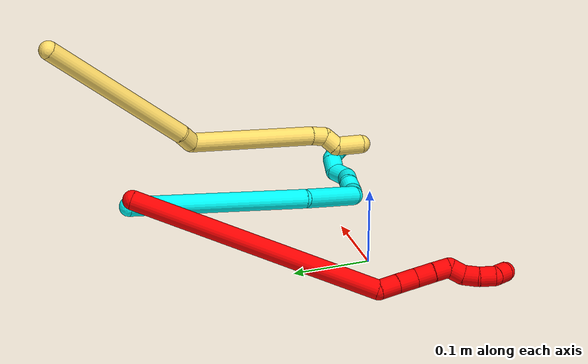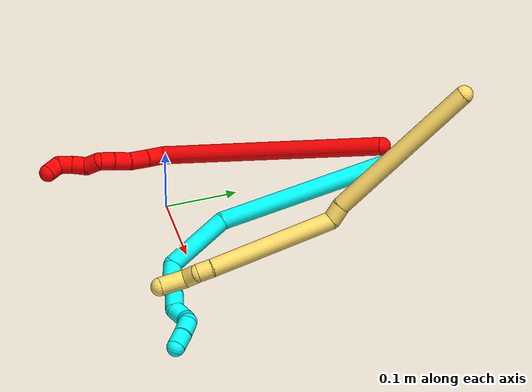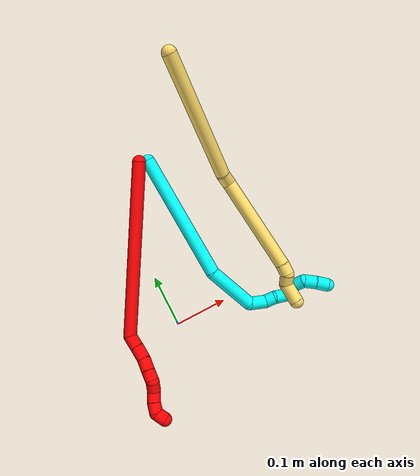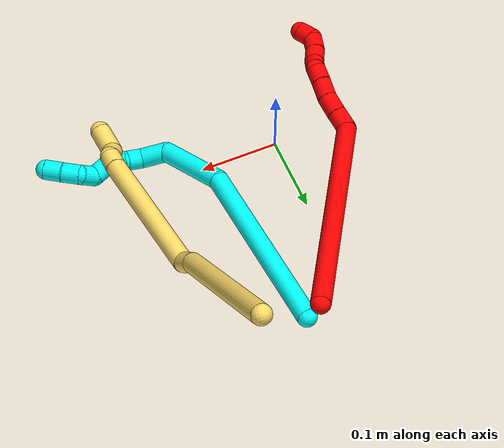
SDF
<sdf version="1.7">
 <world name="default">
  <model name="2">
   <static>0</static>
   <link name="2">
    <collision name="collision-cylinder-e_1_1_4">
     <pose>-0.065632 -0.099158 -0.11053 2.41037 -0.416177 -1.00806</pose>
     <geometry><cylinder><radius>0.0125</radius><length>0.324695</length></cylinder></geometry>
     <surface>
      <friction><ode><mu>1.16</mu><mu2>1.16</mu2><slip1>0</slip1><slip2>0</slip2></ode></friction>
      <contact><ode><kp>1e+06</kp><kd>1</kd><max_vel>0</max_vel><min_depth>0.001</min_depth></ode></contact>
     </surface>
    </collision>
    <visual name="visual-cylinder-e_1_1_4">
     <pose>-0.065632 -0.099158 -0.11053 2.41037 -0.416177 -1.00806</pose>
     <geometry><cylinder><radius>0.0125</radius><length>0.324695</length></cylinder></geometry>
     <material><ambient>1 0 0 1</ambient></material>
    </visual>
    <collision name="collision-cylinder-e_2_4_5">
     <pose>-0.132399 -0.210656 -0.222706 1.70341 -0.090958 -0.103876</pose>
     <geometry><cylinder><radius>0.0125</radius><length>0.025002</length></cylinder></geometry>
     <surface>
      <friction><ode><mu>1.16</mu><mu2>1.16</mu2><slip1>0</slip1><slip2>0</slip2></ode></friction>
      <contact><ode><kp>1e+06</kp><kd>1</kd><max_vel>0</max_vel><min_depth>0.001</min_depth></ode></contact>
     </surface>
    </collision>
    <visual name="visual-cylinder-e_2_4_5">
     <pose>-0.132399 -0.210656 -0.222706 1.70341 -0.090958 -0.103876</pose>
     <geometry><cylinder><radius>0.0125</radius><length>0.025002</length></cylinder></geometry>
     <material><ambient>1 0 0 1</ambient></material>
    </visual>
    <collision name="collision-cylinder-e_3_5_6">
     <pose>-0.135058 -0.235643 -0.226225 1.71788 -0.118668 -0.137489</pose>
     <geometry><cylinder><radius>0.0125</radius><length>0.025751</length></cylinder></geometry>
     <surface>
      <friction><ode><mu>1.16</mu><mu2>1.16</mu2><slip1>0</slip1><slip2>0</slip2></ode></friction>
      <contact><ode><kp>1e+06</kp><kd>1</kd><max_vel>0</max_vel><min_depth>0.001</min_depth></ode></contact>
     </surface>
    </collision>
    <visual name="visual-cylinder-e_3_5_6">
     <pose>-0.135058 -0.235643 -0.226225 1.71788 -0.118668 -0.137489</pose>
     <geometry><cylinder><radius>0.0125</radius><length>0.025751</length></cylinder></geometry>
     <material><ambient>1 0 0 1</ambient></material>
    </visual>
    <collision name="collision-cylinder-e_4_6_7">
     <pose>-0.140235 -0.259613 -0.229545 1.69783 -0.309681 -0.35094</pose>
     <geometry><cylinder><radius>0.0125</radius><length>0.02397</length></cylinder></geometry>
     <surface>
      <friction><ode><mu>1.16</mu><mu2>1.16</mu2><slip1>0</slip1><slip2>0</slip2></ode></friction>
      <contact><ode><kp>1e+06</kp><kd>1</kd><max_vel>0</max_vel><min_depth>0.001</min_depth></ode></contact>
     </surface>
    </collision>
    <visual name="visual-cylinder-e_4_6_7">
     <pose>-0.140235 -0.259613 -0.229545 1.69783 -0.309681 -0.35094</pose>
     <geometry><cylinder><radius>0.0125</radius><length>0.02397</length></cylinder></geometry>
     <material><ambient>1 0 0 1</ambient></material>
    </visual>
    <collision name="collision-cylinder-e_5_7_8">
     <pose>-0.146526 -0.280599 -0.232405 1.71612 -0.263877 -0.304713</pose>
     <geometry><cylinder><radius>0.0125</radius><length>0.020232</length></cylinder></geometry>
     <surface>
      <friction><ode><mu>1.16</mu><mu2>1.16</mu2><slip1>0</slip1><slip2>0</slip2></ode></friction>
      <contact><ode><kp>1e+06</kp><kd>1</kd><max_vel>0</max_vel><min_depth>0.001</min_depth></ode></contact>
     </surface>
    </collision>
    <visual name="visual-cylinder-e_5_7_8">
     <pose>-0.146526 -0.280599 -0.232405 1.71612 -0.263877 -0.304713</pose>
     <geometry><cylinder><radius>0.0125</radius><length>0.020232</length></cylinder></geometry>
     <material><ambient>1 0 0 1</ambient></material>
    </visual>
    <collision name="collision-cylinder-e_6_8_9">
     <pose>-0.150354 -0.296393 -0.241801 2.48654 -0.117641 -0.343232</pose>
     <geometry><cylinder><radius>0.0125</radius><length>0.020268</length></cylinder></geometry>
     <surface>
      <friction><ode><mu>1.16</mu><mu2>1.16</mu2><slip1>0</slip1><slip2>0</slip2></ode></friction>
      <contact><ode><kp>1e+06</kp><kd>1</kd><max_vel>0</max_vel><min_depth>0.001</min_depth></ode></contact>
     </surface>
    </collision>
    <visual name="visual-cylinder-e_6_8_9">
     <pose>-0.150354 -0.296393 -0.241801 2.48654 -0.117641 -0.343232</pose>
     <geometry><cylinder><radius>0.0125</radius><length>0.020268</length></cylinder></geometry>
     <material><ambient>1 0 0 1</ambient></material>
    </visual>
    <collision name="collision-cylinder-e_7_9_10">
     <pose>-0.156544 -0.309752 -0.254629 2.16155 -0.521532 -0.927693</pose>
     <geometry><cylinder><radius>0.0125</radius><length>0.020075</length></cylinder></geometry>
     <surface>
      <friction><ode><mu>1.16</mu><mu2>1.16</mu2><slip1>0</slip1><slip2>0</slip2></ode></friction>
      <contact><ode><kp>1e+06</kp><kd>1</kd><max_vel>0</max_vel><min_depth>0.001</min_depth></ode></contact>
     </surface>
    </collision>
    <visual name="visual-cylinder-e_7_9_10">
     <pose>-0.156544 -0.309752 -0.254629 2.16155 -0.521532 -0.927693</pose>
     <geometry><cylinder><radius>0.0125</radius><length>0.020075</length></cylinder></geometry>
     <material><ambient>1 0 0 1</ambient></material>
    </visual>
    <collision name="collision-cylinder-e_8_10_11">
     <pose>-0.165001 -0.325657 -0.263058 1.96225 -0.352734 -0.52064</pose>
     <geometry><cylinder><radius>0.0125</radius><length>0.020006</length></cylinder></geometry>
     <surface>
      <friction><ode><mu>1.16</mu><mu2>1.16</mu2><slip1>0</slip1><slip2>0</slip2></ode></friction>
      <contact><ode><kp>1e+06</kp><kd>1</kd><max_vel>0</max_vel><min_depth>0.001</min_depth></ode></contact>
     </surface>
    </collision>
    <visual name="visual-cylinder-e_8_10_11">
     <pose>-0.165001 -0.325657 -0.263058 1.96225 -0.352734 -0.52064</pose>
     <geometry><cylinder><radius>0.0125</radius><length>0.020006</length></cylinder></geometry>
     <material><ambient>1 0 0 1</ambient></material>
    </visual>
    <collision name="collision-cylinder-e_9_11_2">
     <pose>-0.165033 -0.343641 -0.267935 1.70917 0.349437 0.40018</pose>
     <geometry><cylinder><radius>0.0125</radius><length>0.020001</length></cylinder></geometry>
     <surface>
      <friction><ode><mu>1.16</mu><mu2>1.16</mu2><slip1>0</slip1><slip2>0</slip2></ode></friction>
      <contact><ode><kp>1e+06</kp><kd>1</kd><max_vel>0</max_vel><min_depth>0.001</min_depth></ode></contact>
     </surface>
    </collision>
    <visual name="visual-cylinder-e_9_11_2">
     <pose>-0.165033 -0.343641 -0.267935 1.70917 0.349437 0.40018</pose>
     <geometry><cylinder><radius>0.0125</radius><length>0.020001</length></cylinder></geometry>
     <material><ambient>1 0 0 1</ambient></material>
    </visual>
    <collision name="collision-sphere-2">
     <pose>-0.161609 -0.352947 -0.269232 0 -0 0</pose>
     <geometry><sphere><radius>0.0125</radius></sphere></geometry>
     <surface>
      <friction><ode><mu>1.16</mu><mu2>1.16</mu2><slip1>0</slip1><slip2>0</slip2></ode></friction>
      <contact><ode><kp>1e+06</kp><kd>1</kd><max_vel>0</max_vel><min_depth>0.001</min_depth></ode></contact>
     </surface>
    </collision>
    <visual name="visual-sphere-2">
     <pose>-0.161609 -0.352947 -0.269232 0 -0 0</pose>
     <geometry><sphere><radius>0.0125</radius></sphere></geometry>
     <material><ambient>1 0 0 1</ambient></material>
    </visual>
    <collision name="collision-sphere-11">
     <pose>-0.168456 -0.334334 -0.266639 0 -0 0</pose>
     <geometry><sphere><radius>0.0125</radius></sphere></geometry>
     <surface>
      <friction><ode><mu>1.16</mu><mu2>1.16</mu2><slip1>0</slip1><slip2>0</slip2></ode></friction>
      <contact><ode><kp>1e+06</kp><kd>1</kd><max_vel>0</max_vel><min_depth>0.001</min_depth></ode></contact>
     </surface>
    </collision>
    <visual name="visual-sphere-11">
     <pose>-0.168456 -0.334334 -0.266639 0 -0 0</pose>
     <geometry><sphere><radius>0.0125</radius></sphere></geometry>
     <material><ambient>1 0 0 1</ambient></material>
    </visual>
    <collision name="collision-sphere-10">
     <pose>-0.161545 -0.316981 -0.259477 0 -0 0</pose>
     <geometry><sphere><radius>0.0125</radius></sphere></geometry>
     <surface>
      <friction><ode><mu>1.16</mu><mu2>1.16</mu2><slip1>0</slip1><slip2>0</slip2></ode></friction>
      <contact><ode><kp>1e+06</kp><kd>1</kd><max_vel>0</max_vel><min_depth>0.001</min_depth></ode></contact>
     </surface>
    </collision>
    <visual name="visual-sphere-10">
     <pose>-0.161545 -0.316981 -0.259477 0 -0 0</pose>
     <geometry><sphere><radius>0.0125</radius></sphere></geometry>
     <material><ambient>1 0 0 1</ambient></material>
    </visual>
    <collision name="collision-sphere-9">
     <pose>-0.151544 -0.302524 -0.249782 0 -0 0</pose>
     <geometry><sphere><radius>0.0125</radius></sphere></geometry>
     <surface>
      <friction><ode><mu>1.16</mu><mu2>1.16</mu2><slip1>0</slip1><slip2>0</slip2></ode></friction>
      <contact><ode><kp>1e+06</kp><kd>1</kd><max_vel>0</max_vel><min_depth>0.001</min_depth></ode></contact>
     </surface>
    </collision>
    <visual name="visual-sphere-9">
     <pose>-0.151544 -0.302524 -0.249782 0 -0 0</pose>
     <geometry><sphere><radius>0.0125</radius></sphere></geometry>
     <material><ambient>1 0 0 1</ambient></material>
    </visual>
    <collision name="collision-sphere-4">
     <pose>-0.131263 -0.198316 -0.221059 0 -0 0</pose>
     <geometry><sphere><radius>0.0125</radius></sphere></geometry>
     <surface>
      <friction><ode><mu>1.16</mu><mu2>1.16</mu2><slip1>0</slip1><slip2>0</slip2></ode></friction>
      <contact><ode><kp>1e+06</kp><kd>1</kd><max_vel>0</max_vel><min_depth>0.001</min_depth></ode></contact>
     </surface>
    </collision>
    <visual name="visual-sphere-4">
     <pose>-0.131263 -0.198316 -0.221059 0 -0 0</pose>
     <geometry><sphere><radius>0.0125</radius></sphere></geometry>
     <material><ambient>1 0 0 1</ambient></material>
    </visual>
    <collision name="collision-sphere-1">
     <geometry><sphere><radius>0.0125</radius></sphere></geometry>
     <surface>
      <friction><ode><mu>1.16</mu><mu2>1.16</mu2><slip1>0</slip1><slip2>0</slip2></ode></friction>
      <contact><ode><kp>1e+06</kp><kd>1</kd><max_vel>0</max_vel><min_depth>0.001</min_depth></ode></contact>
     </surface>
    </collision>
    <visual name="visual-sphere-1">
     <geometry><sphere><radius>0.0125</radius></sphere></geometry>
     <material><ambient>1 0 0 1</ambient></material>
    </visual>
    <collision name="collision-sphere-8">
     <pose>-0.149165 -0.290262 -0.23382 0 -0 0</pose>
     <geometry><sphere><radius>0.0125</radius></sphere></geometry>
     <surface>
      <friction><ode><mu>1.16</mu><mu2>1.16</mu2><slip1>0</slip1><slip2>0</slip2></ode></friction>
      <contact><ode><kp>1e+06</kp><kd>1</kd><max_vel>0</max_vel><min_depth>0.001</min_depth></ode></contact>
     </surface>
    </collision>
    <visual name="visual-sphere-8">
     <pose>-0.149165 -0.290262 -0.23382 0 -0 0</pose>
     <geometry><sphere><radius>0.0125</radius></sphere></geometry>
     <material><ambient>1 0 0 1</ambient></material>
    </visual>
    <collision name="collision-sphere-5">
     <pose>-0.133534 -0.222997 -0.224352 0 -0 0</pose>
     <geometry><sphere><radius>0.0125</radius></sphere></geometry>
     <surface>
      <friction><ode><mu>1.16</mu><mu2>1.16</mu2><slip1>0</slip1><slip2>0</slip2></ode></friction>
      <contact><ode><kp>1e+06</kp><kd>1</kd><max_vel>0</max_vel><min_depth>0.001</min_depth></ode></contact>
     </surface>
    </collision>
    <visual name="visual-sphere-5">
     <pose>-0.133534 -0.222997 -0.224352 0 -0 0</pose>
     <geometry><sphere><radius>0.0125</radius></sphere></geometry>
     <material><ambient>1 0 0 1</ambient></material>
    </visual>
    <collision name="collision-sphere-6">
     <pose>-0.136583 -0.24829 -0.228099 0 -0 0</pose>
     <geometry><sphere><radius>0.0125</radius></sphere></geometry>
     <surface>
      <friction><ode><mu>1.16</mu><mu2>1.16</mu2><slip1>0</slip1><slip2>0</slip2></ode></friction>
      <contact><ode><kp>1e+06</kp><kd>1</kd><max_vel>0</max_vel><min_depth>0.001</min_depth></ode></contact>
     </surface>
    </collision>
    <visual name="visual-sphere-6">
     <pose>-0.136583 -0.24829 -0.228099 0 -0 0</pose>
     <geometry><sphere><radius>0.0125</radius></sphere></geometry>
     <material><ambient>1 0 0 1</ambient></material>
    </visual>
    <collision name="collision-sphere-7">
     <pose>-0.143888 -0.270936 -0.230991 0 -0 0</pose>
     <geometry><sphere><radius>0.0125</radius></sphere></geometry>
     <surface>
      <friction><ode><mu>1.16</mu><mu2>1.16</mu2><slip1>0</slip1><slip2>0</slip2></ode></friction>
      <contact><ode><kp>1e+06</kp><kd>1</kd><max_vel>0</max_vel><min_depth>0.001</min_depth></ode></contact>
     </surface>
    </collision>
    <visual name="visual-sphere-7">
     <pose>-0.143888 -0.270936 -0.230991 0 -0 0</pose>
     <geometry><sphere><radius>0.0125</radius></sphere></geometry>
     <material><ambient>1 0 0 1</ambient></material>
    </visual>
    <inertial>
     <pose>-0.094432 -0.16209 -0.156241 0 -0 0</pose>
     <mass>0.5</mass>
     <inertia>
      <ixx>-0.000822</ixx>
      <ixy>0</ixy>
      <ixz>0</ixz>
      <iyy>-0.002733</iyy>
      <iyz>0</iyz>
      <izz>0.002902</izz>
     </inertia>
    </inertial>
   </link>
   <pose>0.07078 0.288031 0.10012 -0.207517 0.51208 0.152343</pose>
  </model>
  <model name="3">
   <static>0</static>
   <link name="3">
    <collision name="collision-cylinder-e_1_1_4">
     <pose>0.049196 -0.089648 -0.062748 2.18148 0.422505 0.78139</pose>
     <geometry><cylinder><radius>0.0125</radius><length>0.239952</length></cylinder></geometry>
     <surface>
      <friction><ode><mu>1.16</mu><mu2>1.16</mu2><slip1>0</slip1><slip2>0</slip2></ode></friction>
      <contact><ode><kp>1e+06</kp><kd>1</kd><max_vel>0</max_vel><min_depth>0.001</min_depth></ode></contact>
     </surface>
    </collision>
    <visual name="visual-cylinder-e_1_1_4">
     <pose>0.049196 -0.089648 -0.062748 2.18148 0.422505 0.78139</pose>
     <geometry><cylinder><radius>0.0125</radius><length>0.239952</length></cylinder></geometry>
     <material><ambient>0.003922 1 0.996078 1</ambient></material>
    </visual>
    <collision name="collision-cylinder-e_2_4_5">
     <pose>0.122801 -0.199264 -0.159077 2.60513 0.55845 1.61304</pose>
     <geometry><cylinder><radius>0.0125</radius><length>0.092136</length></cylinder></geometry>
     <surface>
      <friction><ode><mu>1.16</mu><mu2>1.16</mu2><slip1>0</slip1><slip2>0</slip2></ode></friction>
      <contact><ode><kp>1e+06</kp><kd>1</kd><max_vel>0</max_vel><min_depth>0.001</min_depth></ode></contact>
     </surface>
    </collision>
    <visual name="visual-cylinder-e_2_4_5">
     <pose>0.122801 -0.199264 -0.159077 2.60513 0.55845 1.61304</pose>
     <geometry><cylinder><radius>0.0125</radius><length>0.092136</length></cylinder></geometry>
     <material><ambient>0.003922 1 0.996078 1</ambient></material>
    </visual>
    <collision name="collision-cylinder-e_3_5_6">
     <pose>0.157358 -0.213966 -0.204665 -2.7283 0.658594 -2.0411</pose>
     <geometry><cylinder><radius>0.0125</radius><length>0.033159</length></cylinder></geometry>
     <surface>
      <friction><ode><mu>1.16</mu><mu2>1.16</mu2><slip1>0</slip1><slip2>0</slip2></ode></friction>
      <contact><ode><kp>1e+06</kp><kd>1</kd><max_vel>0</max_vel><min_depth>0.001</min_depth></ode></contact>
     </surface>
    </collision>
    <visual name="visual-cylinder-e_3_5_6">
     <pose>0.157358 -0.213966 -0.204665 -2.7283 0.658594 -2.0411</pose>
     <geometry><cylinder><radius>0.0125</radius><length>0.033159</length></cylinder></geometry>
     <material><ambient>0.003922 1 0.996078 1</ambient></material>
    </visual>
    <collision name="collision-cylinder-e_4_6_7">
     <pose>0.175978 -0.203719 -0.219014 -2.01018 0.994743 -1.41484</pose>
     <geometry><cylinder><radius>0.0125</radius><length>0.020208</length></cylinder></geometry>
     <surface>
      <friction><ode><mu>1.16</mu><mu2>1.16</mu2><slip1>0</slip1><slip2>0</slip2></ode></friction>
      <contact><ode><kp>1e+06</kp><kd>1</kd><max_vel>0</max_vel><min_depth>0.001</min_depth></ode></contact>
     </surface>
    </collision>
    <visual name="visual-cylinder-e_4_6_7">
     <pose>0.175978 -0.203719 -0.219014 -2.01018 0.994743 -1.41484</pose>
     <geometry><cylinder><radius>0.0125</radius><length>0.020208</length></cylinder></geometry>
     <material><ambient>0.003922 1 0.996078 1</ambient></material>
    </visual>
    <collision name="collision-cylinder-e_5_7_8">
     <pose>0.193498 -0.194007 -0.228359 -2.5475 0.819421 -1.91366</pose>
     <geometry><cylinder><radius>0.0125</radius><length>0.024761</length></cylinder></geometry>
     <surface>
      <friction><ode><mu>1.16</mu><mu2>1.16</mu2><slip1>0</slip1><slip2>0</slip2></ode></friction>
      <contact><ode><kp>1e+06</kp><kd>1</kd><max_vel>0</max_vel><min_depth>0.001</min_depth></ode></contact>
     </surface>
    </collision>
    <visual name="visual-cylinder-e_5_7_8">
     <pose>0.193498 -0.194007 -0.228359 -2.5475 0.819421 -1.91366</pose>
     <geometry><cylinder><radius>0.0125</radius><length>0.024761</length></cylinder></geometry>
     <material><ambient>0.003922 1 0.996078 1</ambient></material>
    </visual>
    <collision name="collision-cylinder-e_6_8_9">
     <pose>0.208136 -0.179231 -0.237585 -1.78858 0.497744 -0.6131</pose>
     <geometry><cylinder><radius>0.0125</radius><length>0.023419</length></cylinder></geometry>
     <surface>
      <friction><ode><mu>1.16</mu><mu2>1.16</mu2><slip1>0</slip1><slip2>0</slip2></ode></friction>
      <contact><ode><kp>1e+06</kp><kd>1</kd><max_vel>0</max_vel><min_depth>0.001</min_depth></ode></contact>
     </surface>
    </collision>
    <visual name="visual-cylinder-e_6_8_9">
     <pose>0.208136 -0.179231 -0.237585 -1.78858 0.497744 -0.6131</pose>
     <geometry><cylinder><radius>0.0125</radius><length>0.023419</length></cylinder></geometry>
     <material><ambient>0.003922 1 0.996078 1</ambient></material>
    </visual>
    <collision name="collision-cylinder-e_7_9_10">
     <pose>0.223193 -0.16541 -0.238613 -1.26414 1.17458 -0.907101</pose>
     <geometry><cylinder><radius>0.0125</radius><length>0.020523</length></cylinder></geometry>
     <surface>
      <friction><ode><mu>1.16</mu><mu2>1.16</mu2><slip1>0</slip1><slip2>0</slip2></ode></friction>
      <contact><ode><kp>1e+06</kp><kd>1</kd><max_vel>0</max_vel><min_depth>0.001</min_depth></ode></contact>
     </surface>
    </collision>
    <visual name="visual-cylinder-e_7_9_10">
     <pose>0.223193 -0.16541 -0.238613 -1.26414 1.17458 -0.907101</pose>
     <geometry><cylinder><radius>0.0125</radius><length>0.020523</length></cylinder></geometry>
     <material><ambient>0.003922 1 0.996078 1</ambient></material>
    </visual>
    <collision name="collision-cylinder-e_8_10_11">
     <pose>0.242114 -0.161138 -0.243757 -3.06353 0.978671 -2.9952</pose>
     <geometry><cylinder><radius>0.0125</radius><length>0.022789</length></cylinder></geometry>
     <surface>
      <friction><ode><mu>1.16</mu><mu2>1.16</mu2><slip1>0</slip1><slip2>0</slip2></ode></friction>
      <contact><ode><kp>1e+06</kp><kd>1</kd><max_vel>0</max_vel><min_depth>0.001</min_depth></ode></contact>
     </surface>
    </collision>
    <visual name="visual-cylinder-e_8_10_11">
     <pose>0.242114 -0.161138 -0.243757 -3.06353 0.978671 -2.9952</pose>
     <geometry><cylinder><radius>0.0125</radius><length>0.022789</length></cylinder></geometry>
     <material><ambient>0.003922 1 0.996078 1</ambient></material>
    </visual>
    <collision name="collision-cylinder-e_9_11_2">
     <pose>0.260461 -0.160967 -0.257425 3.09726 0.881063 3.04761</pose>
     <geometry><cylinder><radius>0.0125</radius><length>0.023054</length></cylinder></geometry>
     <surface>
      <friction><ode><mu>1.16</mu><mu2>1.16</mu2><slip1>0</slip1><slip2>0</slip2></ode></friction>
      <contact><ode><kp>1e+06</kp><kd>1</kd><max_vel>0</max_vel><min_depth>0.001</min_depth></ode></contact>
     </surface>
    </collision>
    <visual name="visual-cylinder-e_9_11_2">
     <pose>0.260461 -0.160967 -0.257425 3.09726 0.881063 3.04761</pose>
     <geometry><cylinder><radius>0.0125</radius><length>0.023054</length></cylinder></geometry>
     <material><ambient>0.003922 1 0.996078 1</ambient></material>
    </visual>
    <collision name="collision-sphere-2">
     <pose>0.269354 -0.161293 -0.264753 0 -0 0</pose>
     <geometry><sphere><radius>0.0125</radius></sphere></geometry>
     <surface>
      <friction><ode><mu>1.16</mu><mu2>1.16</mu2><slip1>0</slip1><slip2>0</slip2></ode></friction>
      <contact><ode><kp>1e+06</kp><kd>1</kd><max_vel>0</max_vel><min_depth>0.001</min_depth></ode></contact>
     </surface>
    </collision>
    <visual name="visual-sphere-2">
     <pose>0.269354 -0.161293 -0.264753 0 -0 0</pose>
     <geometry><sphere><radius>0.0125</radius></sphere></geometry>
     <material><ambient>0.003922 1 0.996078 1</ambient></material>
    </visual>
    <collision name="collision-sphere-11">
     <pose>0.251569 -0.160642 -0.250098 0 -0 0</pose>
     <geometry><sphere><radius>0.0125</radius></sphere></geometry>
     <surface>
      <friction><ode><mu>1.16</mu><mu2>1.16</mu2><slip1>0</slip1><slip2>0</slip2></ode></friction>
      <contact><ode><kp>1e+06</kp><kd>1</kd><max_vel>0</max_vel><min_depth>0.001</min_depth></ode></contact>
     </surface>
    </collision>
    <visual name="visual-sphere-11">
     <pose>0.251569 -0.160642 -0.250098 0 -0 0</pose>
     <geometry><sphere><radius>0.0125</radius></sphere></geometry>
     <material><ambient>0.003922 1 0.996078 1</ambient></material>
    </visual>
    <collision name="collision-sphere-10">
     <pose>0.23266 -0.161634 -0.237417 0 -0 0</pose>
     <geometry><sphere><radius>0.0125</radius></sphere></geometry>
     <surface>
      <friction><ode><mu>1.16</mu><mu2>1.16</mu2><slip1>0</slip1><slip2>0</slip2></ode></friction>
      <contact><ode><kp>1e+06</kp><kd>1</kd><max_vel>0</max_vel><min_depth>0.001</min_depth></ode></contact>
     </surface>
    </collision>
    <visual name="visual-sphere-10">
     <pose>0.23266 -0.161634 -0.237417 0 -0 0</pose>
     <geometry><sphere><radius>0.0125</radius></sphere></geometry>
     <material><ambient>0.003922 1 0.996078 1</ambient></material>
    </visual>
    <collision name="collision-sphere-9">
     <pose>0.213726 -0.169185 -0.239808 0 -0 0</pose>
     <geometry><sphere><radius>0.0125</radius></sphere></geometry>
     <surface>
      <friction><ode><mu>1.16</mu><mu2>1.16</mu2><slip1>0</slip1><slip2>0</slip2></ode></friction>
      <contact><ode><kp>1e+06</kp><kd>1</kd><max_vel>0</max_vel><min_depth>0.001</min_depth></ode></contact>
     </surface>
    </collision>
    <visual name="visual-sphere-9">
     <pose>0.213726 -0.169185 -0.239808 0 -0 0</pose>
     <geometry><sphere><radius>0.0125</radius></sphere></geometry>
     <material><ambient>0.003922 1 0.996078 1</ambient></material>
    </visual>
    <collision name="collision-sphere-4">
     <pose>0.098391 -0.179296 -0.125496 0 -0 0</pose>
     <geometry><sphere><radius>0.0125</radius></sphere></geometry>
     <surface>
      <friction><ode><mu>1.16</mu><mu2>1.16</mu2><slip1>0</slip1><slip2>0</slip2></ode></friction>
      <contact><ode><kp>1e+06</kp><kd>1</kd><max_vel>0</max_vel><min_depth>0.001</min_depth></ode></contact>
     </surface>
    </collision>
    <visual name="visual-sphere-4">
     <pose>0.098391 -0.179296 -0.125496 0 -0 0</pose>
     <geometry><sphere><radius>0.0125</radius></sphere></geometry>
     <material><ambient>0.003922 1 0.996078 1</ambient></material>
    </visual>
    <collision name="collision-sphere-1">
     <geometry><sphere><radius>0.0125</radius></sphere></geometry>
     <surface>
      <friction><ode><mu>1.16</mu><mu2>1.16</mu2><slip1>0</slip1><slip2>0</slip2></ode></friction>
      <contact><ode><kp>1e+06</kp><kd>1</kd><max_vel>0</max_vel><min_depth>0.001</min_depth></ode></contact>
     </surface>
    </collision>
    <visual name="visual-sphere-1">
     <geometry><sphere><radius>0.0125</radius></sphere></geometry>
     <material><ambient>0.003922 1 0.996078 1</ambient></material>
    </visual>
    <collision name="collision-sphere-8">
     <pose>0.202545 -0.189276 -0.235362 0 -0 0</pose>
     <geometry><sphere><radius>0.0125</radius></sphere></geometry>
     <surface>
      <friction><ode><mu>1.16</mu><mu2>1.16</mu2><slip1>0</slip1><slip2>0</slip2></ode></friction>
      <contact><ode><kp>1e+06</kp><kd>1</kd><max_vel>0</max_vel><min_depth>0.001</min_depth></ode></contact>
     </surface>
    </collision>
    <visual name="visual-sphere-8">
     <pose>0.202545 -0.189276 -0.235362 0 -0 0</pose>
     <geometry><sphere><radius>0.0125</radius></sphere></geometry>
     <material><ambient>0.003922 1 0.996078 1</ambient></material>
    </visual>
    <collision name="collision-sphere-5">
     <pose>0.147212 -0.219232 -0.192657 0 -0 0</pose>
     <geometry><sphere><radius>0.0125</radius></sphere></geometry>
     <surface>
      <friction><ode><mu>1.16</mu><mu2>1.16</mu2><slip1>0</slip1><slip2>0</slip2></ode></friction>
      <contact><ode><kp>1e+06</kp><kd>1</kd><max_vel>0</max_vel><min_depth>0.001</min_depth></ode></contact>
     </surface>
    </collision>
    <visual name="visual-sphere-5">
     <pose>0.147212 -0.219232 -0.192657 0 -0 0</pose>
     <geometry><sphere><radius>0.0125</radius></sphere></geometry>
     <material><ambient>0.003922 1 0.996078 1</ambient></material>
    </visual>
    <collision name="collision-sphere-6">
     <pose>0.167505 -0.2087 -0.216673 0 -0 0</pose>
     <geometry><sphere><radius>0.0125</radius></sphere></geometry>
     <surface>
      <friction><ode><mu>1.16</mu><mu2>1.16</mu2><slip1>0</slip1><slip2>0</slip2></ode></friction>
      <contact><ode><kp>1e+06</kp><kd>1</kd><max_vel>0</max_vel><min_depth>0.001</min_depth></ode></contact>
     </surface>
    </collision>
    <visual name="visual-sphere-6">
     <pose>0.167505 -0.2087 -0.216673 0 -0 0</pose>
     <geometry><sphere><radius>0.0125</radius></sphere></geometry>
     <material><ambient>0.003922 1 0.996078 1</ambient></material>
    </visual>
    <collision name="collision-sphere-7">
     <pose>0.184451 -0.198738 -0.221356 0 -0 0</pose>
     <geometry><sphere><radius>0.0125</radius></sphere></geometry>
     <surface>
      <friction><ode><mu>1.16</mu><mu2>1.16</mu2><slip1>0</slip1><slip2>0</slip2></ode></friction>
      <contact><ode><kp>1e+06</kp><kd>1</kd><max_vel>0</max_vel><min_depth>0.001</min_depth></ode></contact>
     </surface>
    </collision>
    <visual name="visual-sphere-7">
     <pose>0.184451 -0.198738 -0.221356 0 -0 0</pose>
     <geometry><sphere><radius>0.0125</radius></sphere></geometry>
     <material><ambient>0.003922 1 0.996078 1</ambient></material>
    </visual>
    <inertial>
     <pose>0.115323 -0.141722 -0.137061 0 -0 0</pose>
     <mass>0.5</mass>
     <inertia>
      <ixx>0.001565</ixx>
      <ixy>0</ixy>
      <ixz>0</ixz>
      <iyy>0.000618</iyy>
      <iyz>0</iyz>
      <izz>0.000348</izz>
     </inertia>
    </inertial>
   </link>
   <pose>0.087918 0.288517 0.082516 -0.137182 -0.553587 -0.560184</pose>
  </model>
  <model name="5">
   <static>0</static>
   <link name="5">
    <collision name="collision-cylinder-e_1_1_4">
     <pose>-0.045227 -0.091831 -0.04542 2.03012 -0.41573 -0.654793</pose>
     <geometry><cylinder><radius>0.0125</radius><length>0.223977</length></cylinder></geometry>
     <surface>
      <friction><ode><mu>1.16</mu><mu2>1.16</mu2><slip1>0</slip1><slip2>0</slip2></ode></friction>
      <contact><ode><kp>1e+06</kp><kd>1</kd><max_vel>0</max_vel><min_depth>0.001</min_depth></ode></contact>
     </surface>
    </collision>
    <visual name="visual-cylinder-e_1_1_4">
     <pose>-0.045227 -0.091831 -0.04542 2.03012 -0.41573 -0.654793</pose>
     <geometry><cylinder><radius>0.0125</radius><length>0.223977</length></cylinder></geometry>
     <material><ambient>1 0.858824 0.4 1</ambient></material>
    </visual>
    <collision name="collision-cylinder-e_2_4_5">
     <pose>-0.096323 -0.191639 -0.097697 2.28072 -0.508886 -1.03076</pose>
     <geometry><cylinder><radius>0.0125</radius><length>0.02409</length></cylinder></geometry>
     <surface>
      <friction><ode><mu>1.16</mu><mu2>1.16</mu2><slip1>0</slip1><slip2>0</slip2></ode></friction>
      <contact><ode><kp>1e+06</kp><kd>1</kd><max_vel>0</max_vel><min_depth>0.001</min_depth></ode></contact>
     </surface>
    </collision>
    <visual name="visual-cylinder-e_2_4_5">
     <pose>-0.096323 -0.191639 -0.097697 2.28072 -0.508886 -1.03076</pose>
     <geometry><cylinder><radius>0.0125</radius><length>0.02409</length></cylinder></geometry>
     <material><ambient>1 0.858824 0.4 1</ambient></material>
    </visual>
    <collision name="collision-cylinder-e_3_5_6">
     <pose>-0.089347 -0.278868 -0.138733 1.97799 0.147743 0.224088</pose>
     <geometry><cylinder><radius>0.0125</radius><length>0.174518</length></cylinder></geometry>
     <surface>
      <friction><ode><mu>1.16</mu><mu2>1.16</mu2><slip1>0</slip1><slip2>0</slip2></ode></friction>
      <contact><ode><kp>1e+06</kp><kd>1</kd><max_vel>0</max_vel><min_depth>0.001</min_depth></ode></contact>
     </surface>
    </collision>
    <visual name="visual-cylinder-e_3_5_6">
     <pose>-0.089347 -0.278868 -0.138733 1.97799 0.147743 0.224088</pose>
     <geometry><cylinder><radius>0.0125</radius><length>0.174518</length></cylinder></geometry>
     <material><ambient>1 0.858824 0.4 1</ambient></material>
    </visual>
    <collision name="collision-cylinder-e_4_6_7">
     <pose>-0.075792 -0.367705 -0.175978 1.88013 0.070417 0.096396</pose>
     <geometry><cylinder><radius>0.0125</radius><length>0.020177</length></cylinder></geometry>
     <surface>
      <friction><ode><mu>1.16</mu><mu2>1.16</mu2><slip1>0</slip1><slip2>0</slip2></ode></friction>
      <contact><ode><kp>1e+06</kp><kd>1</kd><max_vel>0</max_vel><min_depth>0.001</min_depth></ode></contact>
     </surface>
    </collision>
    <visual name="visual-cylinder-e_4_6_7">
     <pose>-0.075792 -0.367705 -0.175978 1.88013 0.070417 0.096396</pose>
     <geometry><cylinder><radius>0.0125</radius><length>0.020177</length></cylinder></geometry>
     <material><ambient>1 0.858824 0.4 1</ambient></material>
    </visual>
    <collision name="collision-cylinder-e_5_7_8">
     <pose>-0.080108 -0.386366 -0.178846 1.54925 -0.505703 -0.495364</pose>
     <geometry><cylinder><radius>0.0125</radius><length>0.020752</length></cylinder></geometry>
     <surface>
      <friction><ode><mu>1.16</mu><mu2>1.16</mu2><slip1>0</slip1><slip2>0</slip2></ode></friction>
      <contact><ode><kp>1e+06</kp><kd>1</kd><max_vel>0</max_vel><min_depth>0.001</min_depth></ode></contact>
     </surface>
    </collision>
    <visual name="visual-cylinder-e_5_7_8">
     <pose>-0.080108 -0.386366 -0.178846 1.54925 -0.505703 -0.495364</pose>
     <geometry><cylinder><radius>0.0125</radius><length>0.020752</length></cylinder></geometry>
     <material><ambient>1 0.858824 0.4 1</ambient></material>
    </visual>
    <collision name="collision-cylinder-e_6_8_2">
     <pose>-0.081611 -0.412279 -0.184725 1.91703 0.194357 0.275847</pose>
     <geometry><cylinder><radius>0.0125</radius><length>0.036486</length></cylinder></geometry>
     <surface>
      <friction><ode><mu>1.16</mu><mu2>1.16</mu2><slip1>0</slip1><slip2>0</slip2></ode></friction>
      <contact><ode><kp>1e+06</kp><kd>1</kd><max_vel>0</max_vel><min_depth>0.001</min_depth></ode></contact>
     </surface>
    </collision>
    <visual name="visual-cylinder-e_6_8_2">
     <pose>-0.081611 -0.412279 -0.184725 1.91703 0.194357 0.275847</pose>
     <geometry><cylinder><radius>0.0125</radius><length>0.036486</length></cylinder></geometry>
     <material><ambient>1 0.858824 0.4 1</ambient></material>
    </visual>
    <collision name="collision-sphere-2">
     <pose>-0.078088 -0.429116 -0.190799 0 -0 0</pose>
     <geometry><sphere><radius>0.0125</radius></sphere></geometry>
     <surface>
      <friction><ode><mu>1.16</mu><mu2>1.16</mu2><slip1>0</slip1><slip2>0</slip2></ode></friction>
      <contact><ode><kp>1e+06</kp><kd>1</kd><max_vel>0</max_vel><min_depth>0.001</min_depth></ode></contact>
     </surface>
    </collision>
    <visual name="visual-sphere-2">
     <pose>-0.078088 -0.429116 -0.190799 0 -0 0</pose>
     <geometry><sphere><radius>0.0125</radius></sphere></geometry>
     <material><ambient>1 0.858824 0.4 1</ambient></material>
    </visual>
    <collision name="collision-sphere-4">
     <pose>-0.090455 -0.183661 -0.090841 0 -0 0</pose>
     <geometry><sphere><radius>0.0125</radius></sphere></geometry>
     <surface>
      <friction><ode><mu>1.16</mu><mu2>1.16</mu2><slip1>0</slip1><slip2>0</slip2></ode></friction>
      <contact><ode><kp>1e+06</kp><kd>1</kd><max_vel>0</max_vel><min_depth>0.001</min_depth></ode></contact>
     </surface>
    </collision>
    <visual name="visual-sphere-4">
     <pose>-0.090455 -0.183661 -0.090841 0 -0 0</pose>
     <geometry><sphere><radius>0.0125</radius></sphere></geometry>
     <material><ambient>1 0.858824 0.4 1</ambient></material>
    </visual>
    <collision name="collision-sphere-1">
     <geometry><sphere><radius>0.0125</radius></sphere></geometry>
     <surface>
      <friction><ode><mu>1.16</mu><mu2>1.16</mu2><slip1>0</slip1><slip2>0</slip2></ode></friction>
      <contact><ode><kp>1e+06</kp><kd>1</kd><max_vel>0</max_vel><min_depth>0.001</min_depth></ode></contact>
     </surface>
    </collision>
    <visual name="visual-sphere-1">
     <geometry><sphere><radius>0.0125</radius></sphere></geometry>
     <material><ambient>1 0.858824 0.4 1</ambient></material>
    </visual>
    <collision name="collision-sphere-8">
     <pose>-0.085135 -0.395441 -0.17865 0 -0 0</pose>
     <geometry><sphere><radius>0.0125</radius></sphere></geometry>
     <surface>
      <friction><ode><mu>1.16</mu><mu2>1.16</mu2><slip1>0</slip1><slip2>0</slip2></ode></friction>
      <contact><ode><kp>1e+06</kp><kd>1</kd><max_vel>0</max_vel><min_depth>0.001</min_depth></ode></contact>
     </surface>
    </collision>
    <visual name="visual-sphere-8">
     <pose>-0.085135 -0.395441 -0.17865 0 -0 0</pose>
     <geometry><sphere><radius>0.0125</radius></sphere></geometry>
     <material><ambient>1 0.858824 0.4 1</ambient></material>
    </visual>
    <collision name="collision-sphere-5">
     <pose>-0.102192 -0.199617 -0.104553 0 -0 0</pose>
     <geometry><sphere><radius>0.0125</radius></sphere></geometry>
     <surface>
      <friction><ode><mu>1.16</mu><mu2>1.16</mu2><slip1>0</slip1><slip2>0</slip2></ode></friction>
      <contact><ode><kp>1e+06</kp><kd>1</kd><max_vel>0</max_vel><min_depth>0.001</min_depth></ode></contact>
     </surface>
    </collision>
    <visual name="visual-sphere-5">
     <pose>-0.102192 -0.199617 -0.104553 0 -0 0</pose>
     <geometry><sphere><radius>0.0125</radius></sphere></geometry>
     <material><ambient>1 0.858824 0.4 1</ambient></material>
    </visual>
    <collision name="collision-sphere-6">
     <pose>-0.076502 -0.358119 -0.172914 0 -0 0</pose>
     <geometry><sphere><radius>0.0125</radius></sphere></geometry>
     <surface>
      <friction><ode><mu>1.16</mu><mu2>1.16</mu2><slip1>0</slip1><slip2>0</slip2></ode></friction>
      <contact><ode><kp>1e+06</kp><kd>1</kd><max_vel>0</max_vel><min_depth>0.001</min_depth></ode></contact>
     </surface>
    </collision>
    <visual name="visual-sphere-6">
     <pose>-0.076502 -0.358119 -0.172914 0 -0 0</pose>
     <geometry><sphere><radius>0.0125</radius></sphere></geometry>
     <material><ambient>1 0.858824 0.4 1</ambient></material>
    </visual>
    <collision name="collision-sphere-7">
     <pose>-0.075082 -0.377291 -0.179041 0 -0 0</pose>
     <geometry><sphere><radius>0.0125</radius></sphere></geometry>
     <surface>
      <friction><ode><mu>1.16</mu><mu2>1.16</mu2><slip1>0</slip1><slip2>0</slip2></ode></friction>
      <contact><ode><kp>1e+06</kp><kd>1</kd><max_vel>0</max_vel><min_depth>0.001</min_depth></ode></contact>
     </surface>
    </collision>
    <visual name="visual-sphere-7">
     <pose>-0.075082 -0.377291 -0.179041 0 -0 0</pose>
     <geometry><sphere><radius>0.0125</radius></sphere></geometry>
     <material><ambient>1 0.858824 0.4 1</ambient></material>
    </visual>
    <inertial>
     <pose>-0.068425 -0.208663 -0.10148 0 -0 0</pose>
     <mass>0.5</mass>
     <inertia>
      <ixx>0.000694</ixx>
      <ixy>0</ixy>
      <ixz>0</ixz>
      <iyy>-0.000748</iyy>
      <iyz>0</iyz>
      <izz>0.001494</izz>
     </inertia>
    </inertial>
   </link>
   <pose>0.179683 0.361264 0.267188 0.680747 -1.24751 -0.98175</pose>
  </model>
 </world>
</sdf>
